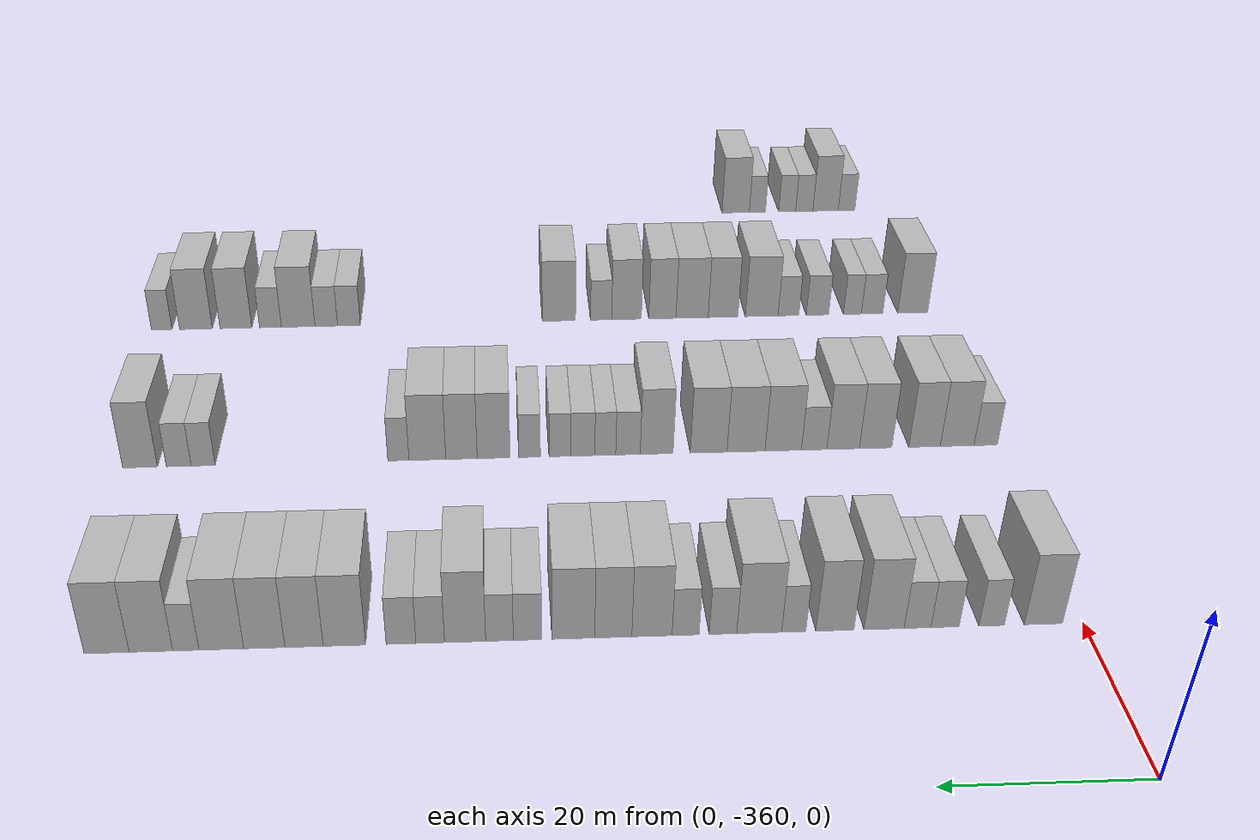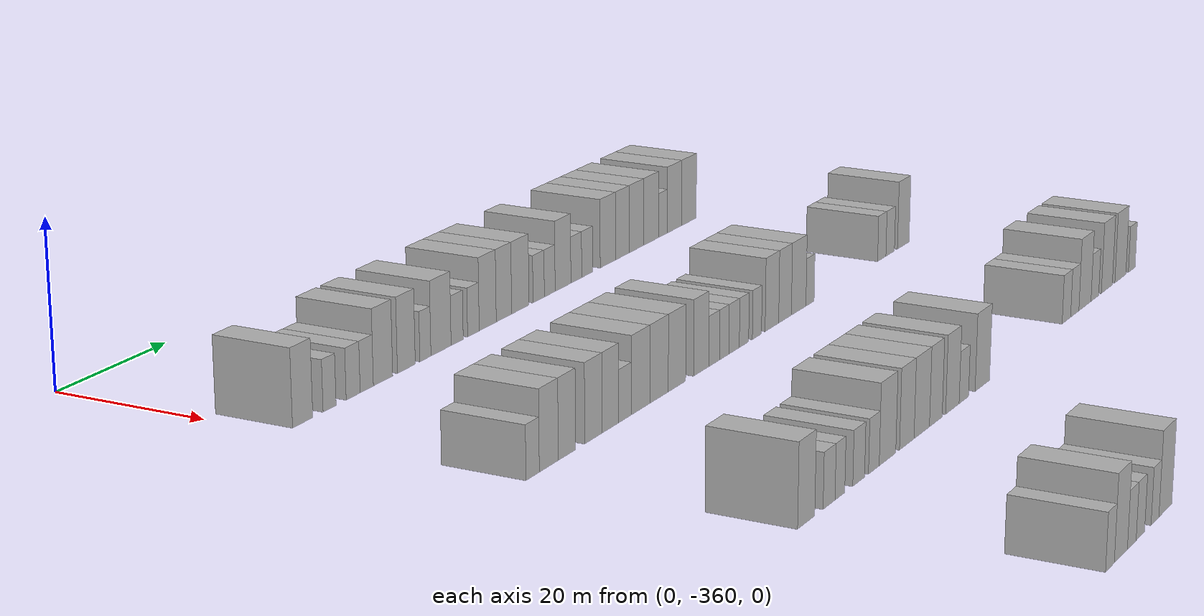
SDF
<sdf version="1.6">
 <world name="default">
  <model name="building_22">
   <static>1</static>
   <pose>25.0000 -355.9842 0 0.000000 0.000000 0.000000</pose>
   <link name="link">
    <pose>0 0 4.50 0 0 0</pose>
    <collision name="collision"><geometry><box><size>10.0000 3.8636 9.0000</size></box></geometry></collision>
    <visual name="visual">
     <cast_shadows>0</cast_shadows>
     <geometry><box><size>10.0000 3.8636 9.0000</size></box></geometry>
     <material>
      <script>
       <uri>model://HANNAS_wall/materials/scripts</uri>
       <uri>model://HANNAS_wall/materials/textures</uri>
       <name>vrc/HANNAS_wall</name>
      </script>
     </material>
    </visual>
   </link>
  </model>
  <model name="building_23">
   <static>1</static>
   <pose>25.0000 -350.7732 0 0.000000 0.000000 0.000000</pose>
   <link name="link">
    <pose>0 0 3.00 0 0 0</pose>
    <collision name="collision"><geometry><box><size>10.0000 2.5584 6.0000</size></box></geometry></collision>
    <visual name="visual">
     <cast_shadows>0</cast_shadows>
     <geometry><box><size>10.0000 2.5584 6.0000</size></box></geometry>
     <material>
      <script>
       <uri>model://HANNAS_wall/materials/scripts</uri>
       <uri>model://HANNAS_wall/materials/textures</uri>
       <name>vrc/HANNAS_wall</name>
      </script>
     </material>
    </visual>
   </link>
  </model>
  <model name="building_24">
   <static>1</static>
   <pose>25.0000 -346.0827 0 0.000000 0.000000 0.000000</pose>
   <link name="link">
    <pose>0 0 3.00 0 0 0</pose>
    <collision name="collision"><geometry><box><size>10.0000 2.8226 6.0000</size></box></geometry></collision>
    <visual name="visual">
     <cast_shadows>0</cast_shadows>
     <geometry><box><size>10.0000 2.8226 6.0000</size></box></geometry>
     <material>
      <script>
       <uri>model://HANNAS_wall/materials/scripts</uri>
       <uri>model://HANNAS_wall/materials/textures</uri>
       <name>vrc/HANNAS_wall</name>
      </script>
     </material>
    </visual>
   </link>
  </model>
  <model name="building_25">
   <static>1</static>
   <pose>25.0000 -343.3241 0 0.000000 0.000000 0.000000</pose>
   <link name="link">
    <pose>0 0 3.00 0 0 0</pose>
    <collision name="collision"><geometry><box><size>10.0000 2.6947 6.0000</size></box></geometry></collision>
    <visual name="visual">
     <cast_shadows>0</cast_shadows>
     <geometry><box><size>10.0000 2.6947 6.0000</size></box></geometry>
     <material>
      <script>
       <uri>model://HANNAS_wall/materials/scripts</uri>
       <uri>model://HANNAS_wall/materials/textures</uri>
       <name>vrc/HANNAS_wall</name>
      </script>
     </material>
    </visual>
   </link>
  </model>
  <model name="building_26">
   <static>1</static>
   <pose>25.0000 -339.9668 0 0.000000 0.000000 0.000000</pose>
   <link name="link">
    <pose>0 0 4.50 0 0 0</pose>
    <collision name="collision"><geometry><box><size>10.0000 4.0198 9.0000</size></box></geometry></collision>
    <visual name="visual">
     <cast_shadows>0</cast_shadows>
     <geometry><box><size>10.0000 4.0198 9.0000</size></box></geometry>
     <material>
      <script>
       <uri>model://HANNAS_wall/materials/scripts</uri>
       <uri>model://HANNAS_wall/materials/textures</uri>
       <name>vrc/HANNAS_wall</name>
      </script>
     </material>
    </visual>
   </link>
  </model>
  <model name="building_27">
   <static>1</static>
   <pose>25.0000 -335.0545 0 0.000000 0.000000 0.000000</pose>
   <link name="link">
    <pose>0 0 4.50 0 0 0</pose>
    <collision name="collision"><geometry><box><size>10.0000 3.8048 9.0000</size></box></geometry></collision>
    <visual name="visual">
     <cast_shadows>0</cast_shadows>
     <geometry><box><size>10.0000 3.8048 9.0000</size></box></geometry>
     <material>
      <script>
       <uri>model://HANNAS_wall/materials/scripts</uri>
       <uri>model://HANNAS_wall/materials/textures</uri>
       <name>vrc/HANNAS_wall</name>
      </script>
     </material>
    </visual>
   </link>
  </model>
  <model name="building_28">
   <static>1</static>
   <pose>25.0000 -330.9472 0 0.000000 0.000000 0.000000</pose>
   <link name="link">
    <pose>0 0 3.00 0 0 0</pose>
    <collision name="collision"><geometry><box><size>10.0000 2.4097 6.0000</size></box></geometry></collision>
    <visual name="visual">
     <cast_shadows>0</cast_shadows>
     <geometry><box><size>10.0000 2.4097 6.0000</size></box></geometry>
     <material>
      <script>
       <uri>model://HANNAS_wall/materials/scripts</uri>
       <uri>model://HANNAS_wall/materials/textures</uri>
       <name>vrc/HANNAS_wall</name>
      </script>
     </material>
    </visual>
   </link>
  </model>
  <model name="building_29">
   <static>1</static>
   <pose>25.0000 -327.5070 0 0.000000 0.000000 0.000000</pose>
   <link name="link">
    <pose>0 0 4.50 0 0 0</pose>
    <collision name="collision"><geometry><box><size>10.0000 4.4708 9.0000</size></box></geometry></collision>
    <visual name="visual">
     <cast_shadows>0</cast_shadows>
     <geometry><box><size>10.0000 4.4708 9.0000</size></box></geometry>
     <material>
      <script>
       <uri>model://HANNAS_wall/materials/scripts</uri>
       <uri>model://HANNAS_wall/materials/textures</uri>
       <name>vrc/HANNAS_wall</name>
      </script>
     </material>
    </visual>
   </link>
  </model>
  <model name="building_30">
   <static>1</static>
   <pose>25.0000 -323.9054 0 0.000000 0.000000 0.000000</pose>
   <link name="link">
    <pose>0 0 3.00 0 0 0</pose>
    <collision name="collision"><geometry><box><size>10.0000 2.7323 6.0000</size></box></geometry></collision>
    <visual name="visual">
     <cast_shadows>0</cast_shadows>
     <geometry><box><size>10.0000 2.7323 6.0000</size></box></geometry>
     <material>
      <script>
       <uri>model://HANNAS_wall/materials/scripts</uri>
       <uri>model://HANNAS_wall/materials/textures</uri>
       <name>vrc/HANNAS_wall</name>
      </script>
     </material>
    </visual>
   </link>
  </model>
  <model name="building_31">
   <static>1</static>
   <pose>25.0000 -320.1996 0 0.000000 0.000000 0.000000</pose>
   <link name="link">
    <pose>0 0 3.00 0 0 0</pose>
    <collision name="collision"><geometry><box><size>10.0000 2.6794 6.0000</size></box></geometry></collision>
    <visual name="visual">
     <cast_shadows>0</cast_shadows>
     <geometry><box><size>10.0000 2.6794 6.0000</size></box></geometry>
     <material>
      <script>
       <uri>model://HANNAS_wall/materials/scripts</uri>
       <uri>model://HANNAS_wall/materials/textures</uri>
       <name>vrc/HANNAS_wall</name>
      </script>
     </material>
    </visual>
   </link>
  </model>
  <model name="building_32">
   <static>1</static>
   <pose>25.0000 -316.8706 0 0.000000 0.000000 0.000000</pose>
   <link name="link">
    <pose>0 0 4.50 0 0 0</pose>
    <collision name="collision"><geometry><box><size>10.0000 3.9786 9.0000</size></box></geometry></collision>
    <visual name="visual">
     <cast_shadows>0</cast_shadows>
     <geometry><box><size>10.0000 3.9786 9.0000</size></box></geometry>
     <material>
      <script>
       <uri>model://HANNAS_wall/materials/scripts</uri>
       <uri>model://HANNAS_wall/materials/textures</uri>
       <name>vrc/HANNAS_wall</name>
      </script>
     </material>
    </visual>
   </link>
  </model>
  <model name="building_33">
   <static>1</static>
   <pose>25.0000 -313.0460 0 0.000000 0.000000 0.000000</pose>
   <link name="link">
    <pose>0 0 4.50 0 0 0</pose>
    <collision name="collision"><geometry><box><size>10.0000 3.6706 9.0000</size></box></geometry></collision>
    <visual name="visual">
     <cast_shadows>0</cast_shadows>
     <geometry><box><size>10.0000 3.6706 9.0000</size></box></geometry>
     <material>
      <script>
       <uri>model://HANNAS_wall/materials/scripts</uri>
       <uri>model://HANNAS_wall/materials/textures</uri>
       <name>vrc/HANNAS_wall</name>
      </script>
     </material>
    </visual>
   </link>
  </model>
  <model name="building_34">
   <static>1</static>
   <pose>25.0000 -309.1105 0 0.000000 0.000000 0.000000</pose>
   <link name="link">
    <pose>0 0 4.50 0 0 0</pose>
    <collision name="collision"><geometry><box><size>10.0000 4.2003 9.0000</size></box></geometry></collision>
    <visual name="visual">
     <cast_shadows>0</cast_shadows>
     <geometry><box><size>10.0000 4.2003 9.0000</size></box></geometry>
     <material>
      <script>
       <uri>model://HANNAS_wall/materials/scripts</uri>
       <uri>model://HANNAS_wall/materials/textures</uri>
       <name>vrc/HANNAS_wall</name>
      </script>
     </material>
    </visual>
   </link>
  </model>
  <model name="building_35">
   <static>1</static>
   <pose>25.0000 -304.6048 0 0.000000 0.000000 0.000000</pose>
   <link name="link">
    <pose>0 0 3.00 0 0 0</pose>
    <collision name="collision"><geometry><box><size>10.0000 2.8110 6.0000</size></box></geometry></collision>
    <visual name="visual">
     <cast_shadows>0</cast_shadows>
     <geometry><box><size>10.0000 2.8110 6.0000</size></box></geometry>
     <material>
      <script>
       <uri>model://HANNAS_wall/materials/scripts</uri>
       <uri>model://HANNAS_wall/materials/textures</uri>
       <name>vrc/HANNAS_wall</name>
      </script>
     </material>
    </visual>
   </link>
  </model>
  <model name="building_36">
   <static>1</static>
   <pose>25.0000 -301.8434 0 0.000000 0.000000 0.000000</pose>
   <link name="link">
    <pose>0 0 3.00 0 0 0</pose>
    <collision name="collision"><geometry><box><size>10.0000 2.7119 6.0000</size></box></geometry></collision>
    <visual name="visual">
     <cast_shadows>0</cast_shadows>
     <geometry><box><size>10.0000 2.7119 6.0000</size></box></geometry>
     <material>
      <script>
       <uri>model://HANNAS_wall/materials/scripts</uri>
       <uri>model://HANNAS_wall/materials/textures</uri>
       <name>vrc/HANNAS_wall</name>
      </script>
     </material>
    </visual>
   </link>
  </model>
  <model name="building_37">
   <static>1</static>
   <pose>25.0000 -298.4720 0 0.000000 0.000000 0.000000</pose>
   <link name="link">
    <pose>0 0 4.50 0 0 0</pose>
    <collision name="collision"><geometry><box><size>10.0000 4.0309 9.0000</size></box></geometry></collision>
    <visual name="visual">
     <cast_shadows>0</cast_shadows>
     <geometry><box><size>10.0000 4.0309 9.0000</size></box></geometry>
     <material>
      <script>
       <uri>model://HANNAS_wall/materials/scripts</uri>
       <uri>model://HANNAS_wall/materials/textures</uri>
       <name>vrc/HANNAS_wall</name>
      </script>
     </material>
    </visual>
   </link>
  </model>
  <model name="building_38">
   <static>1</static>
   <pose>25.0000 -295.0568 0 0.000000 0.000000 0.000000</pose>
   <link name="link">
    <pose>0 0 3.00 0 0 0</pose>
    <collision name="collision"><geometry><box><size>10.0000 2.7996 6.0000</size></box></geometry></collision>
    <visual name="visual">
     <cast_shadows>0</cast_shadows>
     <geometry><box><size>10.0000 2.7996 6.0000</size></box></geometry>
     <material>
      <script>
       <uri>model://HANNAS_wall/materials/scripts</uri>
       <uri>model://HANNAS_wall/materials/textures</uri>
       <name>vrc/HANNAS_wall</name>
      </script>
     </material>
    </visual>
   </link>
  </model>
  <model name="building_39">
   <static>1</static>
   <pose>25.0000 -292.2047 0 0.000000 0.000000 0.000000</pose>
   <link name="link">
    <pose>0 0 3.00 0 0 0</pose>
    <collision name="collision"><geometry><box><size>10.0000 2.9045 6.0000</size></box></geometry></collision>
    <visual name="visual">
     <cast_shadows>0</cast_shadows>
     <geometry><box><size>10.0000 2.9045 6.0000</size></box></geometry>
     <material>
      <script>
       <uri>model://HANNAS_wall/materials/scripts</uri>
       <uri>model://HANNAS_wall/materials/textures</uri>
       <name>vrc/HANNAS_wall</name>
      </script>
     </material>
    </visual>
   </link>
  </model>
  <model name="building_40">
   <static>1</static>
   <pose>25.0000 -286.6852 0 0.000000 0.000000 0.000000</pose>
   <link name="link">
    <pose>0 0 4.50 0 0 0</pose>
    <collision name="collision"><geometry><box><size>10.0000 4.1346 9.0000</size></box></geometry></collision>
    <visual name="visual">
     <cast_shadows>0</cast_shadows>
     <geometry><box><size>10.0000 4.1346 9.0000</size></box></geometry>
     <material>
      <script>
       <uri>model://HANNAS_wall/materials/scripts</uri>
       <uri>model://HANNAS_wall/materials/textures</uri>
       <name>vrc/HANNAS_wall</name>
      </script>
     </material>
    </visual>
   </link>
  </model>
  <model name="building_41">
   <static>1</static>
   <pose>25.0000 -282.7519 0 0.000000 0.000000 0.000000</pose>
   <link name="link">
    <pose>0 0 4.50 0 0 0</pose>
    <collision name="collision"><geometry><box><size>10.0000 3.7319 9.0000</size></box></geometry></collision>
    <visual name="visual">
     <cast_shadows>0</cast_shadows>
     <geometry><box><size>10.0000 3.7319 9.0000</size></box></geometry>
     <material>
      <script>
       <uri>model://HANNAS_wall/materials/scripts</uri>
       <uri>model://HANNAS_wall/materials/textures</uri>
       <name>vrc/HANNAS_wall</name>
      </script>
     </material>
    </visual>
   </link>
  </model>
  <model name="building_42">
   <static>1</static>
   <pose>25.0000 -278.8896 0 0.000000 0.000000 0.000000</pose>
   <link name="link">
    <pose>0 0 4.50 0 0 0</pose>
    <collision name="collision"><geometry><box><size>10.0000 3.9926 9.0000</size></box></geometry></collision>
    <visual name="visual">
     <cast_shadows>0</cast_shadows>
     <geometry><box><size>10.0000 3.9926 9.0000</size></box></geometry>
     <material>
      <script>
       <uri>model://HANNAS_wall/materials/scripts</uri>
       <uri>model://HANNAS_wall/materials/textures</uri>
       <name>vrc/HANNAS_wall</name>
      </script>
     </material>
    </visual>
   </link>
  </model>
  <model name="building_43">
   <static>1</static>
   <pose>25.0000 -274.7238 0 0.000000 0.000000 0.000000</pose>
   <link name="link">
    <pose>0 0 4.50 0 0 0</pose>
    <collision name="collision"><geometry><box><size>10.0000 4.3390 9.0000</size></box></geometry></collision>
    <visual name="visual">
     <cast_shadows>0</cast_shadows>
     <geometry><box><size>10.0000 4.3390 9.0000</size></box></geometry>
     <material>
      <script>
       <uri>model://HANNAS_wall/materials/scripts</uri>
       <uri>model://HANNAS_wall/materials/textures</uri>
       <name>vrc/HANNAS_wall</name>
      </script>
     </material>
    </visual>
   </link>
  </model>
  <model name="building_44">
   <static>1</static>
   <pose>25.0000 -271.2910 0 0.000000 0.000000 0.000000</pose>
   <link name="link">
    <pose>0 0 3.00 0 0 0</pose>
    <collision name="collision"><geometry><box><size>10.0000 2.5265 6.0000</size></box></geometry></collision>
    <visual name="visual">
     <cast_shadows>0</cast_shadows>
     <geometry><box><size>10.0000 2.5265 6.0000</size></box></geometry>
     <material>
      <script>
       <uri>model://HANNAS_wall/materials/scripts</uri>
       <uri>model://HANNAS_wall/materials/textures</uri>
       <name>vrc/HANNAS_wall</name>
      </script>
     </material>
    </visual>
   </link>
  </model>
  <model name="building_45">
   <static>1</static>
   <pose>25.0000 -267.9232 0 0.000000 0.000000 0.000000</pose>
   <link name="link">
    <pose>0 0 4.50 0 0 0</pose>
    <collision name="collision"><geometry><box><size>10.0000 4.2090 9.0000</size></box></geometry></collision>
    <visual name="visual">
     <cast_shadows>0</cast_shadows>
     <geometry><box><size>10.0000 4.2090 9.0000</size></box></geometry>
     <material>
      <script>
       <uri>model://HANNAS_wall/materials/scripts</uri>
       <uri>model://HANNAS_wall/materials/textures</uri>
       <name>vrc/HANNAS_wall</name>
      </script>
     </material>
    </visual>
   </link>
  </model>
  <model name="building_46">
   <static>1</static>
   <pose>25.0000 -263.6469 0 0.000000 0.000000 0.000000</pose>
   <link name="link">
    <pose>0 0 4.50 0 0 0</pose>
    <collision name="collision"><geometry><box><size>10.0000 4.3437 9.0000</size></box></geometry></collision>
    <visual name="visual">
     <cast_shadows>0</cast_shadows>
     <geometry><box><size>10.0000 4.3437 9.0000</size></box></geometry>
     <material>
      <script>
       <uri>model://HANNAS_wall/materials/scripts</uri>
       <uri>model://HANNAS_wall/materials/textures</uri>
       <name>vrc/HANNAS_wall</name>
      </script>
     </material>
    </visual>
   </link>
  </model>
  <model name="building_251">
   <static>1</static>
   <pose>55.0000 -358.9118 0 0.000000 0.000000 0.000000</pose>
   <link name="link">
    <pose>0 0 3.00 0 0 0</pose>
    <collision name="collision"><geometry><box><size>10.0000 2.7487 6.0000</size></box></geometry></collision>
    <visual name="visual">
     <cast_shadows>0</cast_shadows>
     <geometry><box><size>10.0000 2.7487 6.0000</size></box></geometry>
     <material>
      <script>
       <uri>model://HANNAS_wall/materials/scripts</uri>
       <uri>model://HANNAS_wall/materials/textures</uri>
       <name>vrc/HANNAS_wall</name>
      </script>
     </material>
    </visual>
   </link>
  </model>
  <model name="building_252">
   <static>1</static>
   <pose>55.0000 -355.5459 0 0.000000 0.000000 0.000000</pose>
   <link name="link">
    <pose>0 0 4.50 0 0 0</pose>
    <collision name="collision"><geometry><box><size>10.0000 3.9830 9.0000</size></box></geometry></collision>
    <visual name="visual">
     <cast_shadows>0</cast_shadows>
     <geometry><box><size>10.0000 3.9830 9.0000</size></box></geometry>
     <material>
      <script>
       <uri>model://HANNAS_wall/materials/scripts</uri>
       <uri>model://HANNAS_wall/materials/textures</uri>
       <name>vrc/HANNAS_wall</name>
      </script>
     </material>
    </visual>
   </link>
  </model>
  <model name="building_253">
   <static>1</static>
   <pose>55.0000 -351.7031 0 0.000000 0.000000 0.000000</pose>
   <link name="link">
    <pose>0 0 4.50 0 0 0</pose>
    <collision name="collision"><geometry><box><size>10.0000 3.7027 9.0000</size></box></geometry></collision>
    <visual name="visual">
     <cast_shadows>0</cast_shadows>
     <geometry><box><size>10.0000 3.7027 9.0000</size></box></geometry>
     <material>
      <script>
       <uri>model://HANNAS_wall/materials/scripts</uri>
       <uri>model://HANNAS_wall/materials/textures</uri>
       <name>vrc/HANNAS_wall</name>
      </script>
     </material>
    </visual>
   </link>
  </model>
  <model name="building_254">
   <static>1</static>
   <pose>55.0000 -345.9434 0 0.000000 0.000000 0.000000</pose>
   <link name="link">
    <pose>0 0 4.50 0 0 0</pose>
    <collision name="collision"><geometry><box><size>10.0000 3.8166 9.0000</size></box></geometry></collision>
    <visual name="visual">
     <cast_shadows>0</cast_shadows>
     <geometry><box><size>10.0000 3.8166 9.0000</size></box></geometry>
     <material>
      <script>
       <uri>model://HANNAS_wall/materials/scripts</uri>
       <uri>model://HANNAS_wall/materials/textures</uri>
       <name>vrc/HANNAS_wall</name>
      </script>
     </material>
    </visual>
   </link>
  </model>
  <model name="building_255">
   <static>1</static>
   <pose>55.0000 -342.1344 0 0.000000 0.000000 0.000000</pose>
   <link name="link">
    <pose>0 0 4.50 0 0 0</pose>
    <collision name="collision"><geometry><box><size>10.0000 3.8015 9.0000</size></box></geometry></collision>
    <visual name="visual">
     <cast_shadows>0</cast_shadows>
     <geometry><box><size>10.0000 3.8015 9.0000</size></box></geometry>
     <material>
      <script>
       <uri>model://HANNAS_wall/materials/scripts</uri>
       <uri>model://HANNAS_wall/materials/textures</uri>
       <name>vrc/HANNAS_wall</name>
      </script>
     </material>
    </visual>
   </link>
  </model>
  <model name="building_256">
   <static>1</static>
   <pose>55.0000 -338.7453 0 0.000000 0.000000 0.000000</pose>
   <link name="link">
    <pose>0 0 3.00 0 0 0</pose>
    <collision name="collision"><geometry><box><size>10.0000 2.9768 6.0000</size></box></geometry></collision>
    <visual name="visual">
     <cast_shadows>0</cast_shadows>
     <geometry><box><size>10.0000 2.9768 6.0000</size></box></geometry>
     <material>
      <script>
       <uri>model://HANNAS_wall/materials/scripts</uri>
       <uri>model://HANNAS_wall/materials/textures</uri>
       <name>vrc/HANNAS_wall</name>
      </script>
     </material>
    </visual>
   </link>
  </model>
  <model name="building_257">
   <static>1</static>
   <pose>55.0000 -335.1274 0 0.000000 0.000000 0.000000</pose>
   <link name="link">
    <pose>0 0 4.50 0 0 0</pose>
    <collision name="collision"><geometry><box><size>10.0000 4.2589 9.0000</size></box></geometry></collision>
    <visual name="visual">
     <cast_shadows>0</cast_shadows>
     <geometry><box><size>10.0000 4.2589 9.0000</size></box></geometry>
     <material>
      <script>
       <uri>model://HANNAS_wall/materials/scripts</uri>
       <uri>model://HANNAS_wall/materials/textures</uri>
       <name>vrc/HANNAS_wall</name>
      </script>
     </material>
    </visual>
   </link>
  </model>
  <model name="building_258">
   <static>1</static>
   <pose>55.0000 -330.7786 0 0.000000 0.000000 0.000000</pose>
   <link name="link">
    <pose>0 0 4.50 0 0 0</pose>
    <collision name="collision"><geometry><box><size>10.0000 4.4389 9.0000</size></box></geometry></collision>
    <visual name="visual">
     <cast_shadows>0</cast_shadows>
     <geometry><box><size>10.0000 4.4389 9.0000</size></box></geometry>
     <material>
      <script>
       <uri>model://HANNAS_wall/materials/scripts</uri>
       <uri>model://HANNAS_wall/materials/textures</uri>
       <name>vrc/HANNAS_wall</name>
      </script>
     </material>
    </visual>
   </link>
  </model>
  <model name="building_259">
   <static>1</static>
   <pose>55.0000 -326.4228 0 0.000000 0.000000 0.000000</pose>
   <link name="link">
    <pose>0 0 4.50 0 0 0</pose>
    <collision name="collision"><geometry><box><size>10.0000 4.2726 9.0000</size></box></geometry></collision>
    <visual name="visual">
     <cast_shadows>0</cast_shadows>
     <geometry><box><size>10.0000 4.2726 9.0000</size></box></geometry>
     <material>
      <script>
       <uri>model://HANNAS_wall/materials/scripts</uri>
       <uri>model://HANNAS_wall/materials/textures</uri>
       <name>vrc/HANNAS_wall</name>
      </script>
     </material>
    </visual>
   </link>
  </model>
  <model name="building_260">
   <static>1</static>
   <pose>55.0000 -320.3774 0 0.000000 0.000000 0.000000</pose>
   <link name="link">
    <pose>0 0 4.50 0 0 0</pose>
    <collision name="collision"><geometry><box><size>10.0000 3.8182 9.0000</size></box></geometry></collision>
    <visual name="visual">
     <cast_shadows>0</cast_shadows>
     <geometry><box><size>10.0000 3.8182 9.0000</size></box></geometry>
     <material>
      <script>
       <uri>model://HANNAS_wall/materials/scripts</uri>
       <uri>model://HANNAS_wall/materials/textures</uri>
       <name>vrc/HANNAS_wall</name>
      </script>
     </material>
    </visual>
   </link>
  </model>
  <model name="building_261">
   <static>1</static>
   <pose>55.0000 -317.0507 0 0.000000 0.000000 0.000000</pose>
   <link name="link">
    <pose>0 0 3.00 0 0 0</pose>
    <collision name="collision"><geometry><box><size>10.0000 2.8353 6.0000</size></box></geometry></collision>
    <visual name="visual">
     <cast_shadows>0</cast_shadows>
     <geometry><box><size>10.0000 2.8353 6.0000</size></box></geometry>
     <material>
      <script>
       <uri>model://HANNAS_wall/materials/scripts</uri>
       <uri>model://HANNAS_wall/materials/textures</uri>
       <name>vrc/HANNAS_wall</name>
      </script>
     </material>
    </visual>
   </link>
  </model>
  <model name="building_262">
   <static>1</static>
   <pose>55.0000 -314.4151 0 0.000000 0.000000 0.000000</pose>
   <link name="link">
    <pose>0 0 3.00 0 0 0</pose>
    <collision name="collision"><geometry><box><size>10.0000 2.4359 6.0000</size></box></geometry></collision>
    <visual name="visual">
     <cast_shadows>0</cast_shadows>
     <geometry><box><size>10.0000 2.4359 6.0000</size></box></geometry>
     <material>
      <script>
       <uri>model://HANNAS_wall/materials/scripts</uri>
       <uri>model://HANNAS_wall/materials/textures</uri>
       <name>vrc/HANNAS_wall</name>
      </script>
     </material>
    </visual>
   </link>
  </model>
  <model name="building_263">
   <static>1</static>
   <pose>55.0000 -311.8177 0 0.000000 0.000000 0.000000</pose>
   <link name="link">
    <pose>0 0 3.00 0 0 0</pose>
    <collision name="collision"><geometry><box><size>10.0000 2.7589 6.0000</size></box></geometry></collision>
    <visual name="visual">
     <cast_shadows>0</cast_shadows>
     <geometry><box><size>10.0000 2.7589 6.0000</size></box></geometry>
     <material>
      <script>
       <uri>model://HANNAS_wall/materials/scripts</uri>
       <uri>model://HANNAS_wall/materials/textures</uri>
       <name>vrc/HANNAS_wall</name>
      </script>
     </material>
    </visual>
   </link>
  </model>
  <model name="building_264">
   <static>1</static>
   <pose>55.0000 -309.1792 0 0.000000 0.000000 0.000000</pose>
   <link name="link">
    <pose>0 0 3.00 0 0 0</pose>
    <collision name="collision"><geometry><box><size>10.0000 2.5182 6.0000</size></box></geometry></collision>
    <visual name="visual">
     <cast_shadows>0</cast_shadows>
     <geometry><box><size>10.0000 2.5182 6.0000</size></box></geometry>
     <material>
      <script>
       <uri>model://HANNAS_wall/materials/scripts</uri>
       <uri>model://HANNAS_wall/materials/textures</uri>
       <name>vrc/HANNAS_wall</name>
      </script>
     </material>
    </visual>
   </link>
  </model>
  <model name="building_265">
   <static>1</static>
   <pose>55.0000 -305.6675 0 0.000000 0.000000 0.000000</pose>
   <link name="link">
    <pose>0 0 3.00 0 0 0</pose>
    <collision name="collision"><geometry><box><size>10.0000 2.5051 6.0000</size></box></geometry></collision>
    <visual name="visual">
     <cast_shadows>0</cast_shadows>
     <geometry><box><size>10.0000 2.5051 6.0000</size></box></geometry>
     <material>
      <script>
       <uri>model://HANNAS_wall/materials/scripts</uri>
       <uri>model://HANNAS_wall/materials/textures</uri>
       <name>vrc/HANNAS_wall</name>
      </script>
     </material>
    </visual>
   </link>
  </model>
  <model name="building_266">
   <static>1</static>
   <pose>55.0000 -301.5225 0 0.000000 0.000000 0.000000</pose>
   <link name="link">
    <pose>0 0 4.50 0 0 0</pose>
    <collision name="collision"><geometry><box><size>10.0000 3.7850 9.0000</size></box></geometry></collision>
    <visual name="visual">
     <cast_shadows>0</cast_shadows>
     <geometry><box><size>10.0000 3.7850 9.0000</size></box></geometry>
     <material>
      <script>
       <uri>model://HANNAS_wall/materials/scripts</uri>
       <uri>model://HANNAS_wall/materials/textures</uri>
       <name>vrc/HANNAS_wall</name>
      </script>
     </material>
    </visual>
   </link>
  </model>
  <model name="building_267">
   <static>1</static>
   <pose>55.0000 -297.8250 0 0.000000 0.000000 0.000000</pose>
   <link name="link">
    <pose>0 0 4.50 0 0 0</pose>
    <collision name="collision"><geometry><box><size>10.0000 3.6100 9.0000</size></box></geometry></collision>
    <visual name="visual">
     <cast_shadows>0</cast_shadows>
     <geometry><box><size>10.0000 3.6100 9.0000</size></box></geometry>
     <material>
      <script>
       <uri>model://HANNAS_wall/materials/scripts</uri>
       <uri>model://HANNAS_wall/materials/textures</uri>
       <name>vrc/HANNAS_wall</name>
      </script>
     </material>
    </visual>
   </link>
  </model>
  <model name="building_268">
   <static>1</static>
   <pose>55.0000 -293.9086 0 0.000000 0.000000 0.000000</pose>
   <link name="link">
    <pose>0 0 4.50 0 0 0</pose>
    <collision name="collision"><geometry><box><size>10.0000 4.2228 9.0000</size></box></geometry></collision>
    <visual name="visual">
     <cast_shadows>0</cast_shadows>
     <geometry><box><size>10.0000 4.2228 9.0000</size></box></geometry>
     <material>
      <script>
       <uri>model://HANNAS_wall/materials/scripts</uri>
       <uri>model://HANNAS_wall/materials/textures</uri>
       <name>vrc/HANNAS_wall</name>
      </script>
     </material>
    </visual>
   </link>
  </model>
  <model name="building_269">
   <static>1</static>
   <pose>55.0000 -290.5890 0 0.000000 0.000000 0.000000</pose>
   <link name="link">
    <pose>0 0 3.00 0 0 0</pose>
    <collision name="collision"><geometry><box><size>10.0000 2.4164 6.0000</size></box></geometry></collision>
    <visual name="visual">
     <cast_shadows>0</cast_shadows>
     <geometry><box><size>10.0000 2.4164 6.0000</size></box></geometry>
     <material>
      <script>
       <uri>model://HANNAS_wall/materials/scripts</uri>
       <uri>model://HANNAS_wall/materials/textures</uri>
       <name>vrc/HANNAS_wall</name>
      </script>
     </material>
    </visual>
   </link>
  </model>
  <model name="building_270">
   <static>1</static>
   <pose>55.0000 -268.3069 0 0.000000 0.000000 0.000000</pose>
   <link name="link">
    <pose>0 0 3.00 0 0 0</pose>
    <collision name="collision"><geometry><box><size>10.0000 2.7160 6.0000</size></box></geometry></collision>
    <visual name="visual">
     <cast_shadows>0</cast_shadows>
     <geometry><box><size>10.0000 2.7160 6.0000</size></box></geometry>
     <material>
      <script>
       <uri>model://HANNAS_wall/materials/scripts</uri>
       <uri>model://HANNAS_wall/materials/textures</uri>
       <name>vrc/HANNAS_wall</name>
      </script>
     </material>
    </visual>
   </link>
  </model>
  <model name="building_271">
   <static>1</static>
   <pose>55.0000 -265.5389 0 0.000000 0.000000 0.000000</pose>
   <link name="link">
    <pose>0 0 3.00 0 0 0</pose>
    <collision name="collision"><geometry><box><size>10.0000 2.8201 6.0000</size></box></geometry></collision>
    <visual name="visual">
     <cast_shadows>0</cast_shadows>
     <geometry><box><size>10.0000 2.8201 6.0000</size></box></geometry>
     <material>
      <script>
       <uri>model://HANNAS_wall/materials/scripts</uri>
       <uri>model://HANNAS_wall/materials/textures</uri>
       <name>vrc/HANNAS_wall</name>
      </script>
     </material>
    </visual>
   </link>
  </model>
  <model name="building_272">
   <static>1</static>
   <pose>55.0000 -261.1617 0 0.000000 0.000000 0.000000</pose>
   <link name="link">
    <pose>0 0 4.50 0 0 0</pose>
    <collision name="collision"><geometry><box><size>10.0000 3.9342 9.0000</size></box></geometry></collision>
    <visual name="visual">
     <cast_shadows>0</cast_shadows>
     <geometry><box><size>10.0000 3.9342 9.0000</size></box></geometry>
     <material>
      <script>
       <uri>model://HANNAS_wall/materials/scripts</uri>
       <uri>model://HANNAS_wall/materials/textures</uri>
       <name>vrc/HANNAS_wall</name>
      </script>
     </material>
    </visual>
   </link>
  </model>
  <model name="building_467">
   <static>1</static>
   <pose>85.0000 -357.7695 0 0.000000 0.000000 0.000000</pose>
   <link name="link">
    <pose>0 0 4.50 0 0 0</pose>
    <collision name="collision"><geometry><box><size>10.0000 4.0440 9.0000</size></box></geometry></collision>
    <visual name="visual">
     <cast_shadows>0</cast_shadows>
     <geometry><box><size>10.0000 4.0440 9.0000</size></box></geometry>
     <material>
      <script>
       <uri>model://HANNAS_wall/materials/scripts</uri>
       <uri>model://HANNAS_wall/materials/textures</uri>
       <name>vrc/HANNAS_wall</name>
      </script>
     </material>
    </visual>
   </link>
  </model>
  <model name="building_468">
   <static>1</static>
   <pose>85.0000 -352.2981 0 0.000000 0.000000 0.000000</pose>
   <link name="link">
    <pose>0 0 3.00 0 0 0</pose>
    <collision name="collision"><geometry><box><size>10.0000 2.8989 6.0000</size></box></geometry></collision>
    <visual name="visual">
     <cast_shadows>0</cast_shadows>
     <geometry><box><size>10.0000 2.8989 6.0000</size></box></geometry>
     <material>
      <script>
       <uri>model://HANNAS_wall/materials/scripts</uri>
       <uri>model://HANNAS_wall/materials/textures</uri>
       <name>vrc/HANNAS_wall</name>
      </script>
     </material>
    </visual>
   </link>
  </model>
  <model name="building_469">
   <static>1</static>
   <pose>85.0000 -349.6460 0 0.000000 0.000000 0.000000</pose>
   <link name="link">
    <pose>0 0 3.00 0 0 0</pose>
    <collision name="collision"><geometry><box><size>10.0000 2.4054 6.0000</size></box></geometry></collision>
    <visual name="visual">
     <cast_shadows>0</cast_shadows>
     <geometry><box><size>10.0000 2.4054 6.0000</size></box></geometry>
     <material>
      <script>
       <uri>model://HANNAS_wall/materials/scripts</uri>
       <uri>model://HANNAS_wall/materials/textures</uri>
       <name>vrc/HANNAS_wall</name>
      </script>
     </material>
    </visual>
   </link>
  </model>
  <model name="building_470">
   <static>1</static>
   <pose>85.0000 -344.9437 0 0.000000 0.000000 0.000000</pose>
   <link name="link">
    <pose>0 0 3.00 0 0 0</pose>
    <collision name="collision"><geometry><box><size>10.0000 2.9993 6.0000</size></box></geometry></collision>
    <visual name="visual">
     <cast_shadows>0</cast_shadows>
     <geometry><box><size>10.0000 2.9993 6.0000</size></box></geometry>
     <material>
      <script>
       <uri>model://HANNAS_wall/materials/scripts</uri>
       <uri>model://HANNAS_wall/materials/textures</uri>
       <name>vrc/HANNAS_wall</name>
      </script>
     </material>
    </visual>
   </link>
  </model>
  <model name="building_471">
   <static>1</static>
   <pose>85.0000 -341.0512 0 0.000000 0.000000 0.000000</pose>
   <link name="link">
    <pose>0 0 3.00 0 0 0</pose>
    <collision name="collision"><geometry><box><size>10.0000 2.7857 6.0000</size></box></geometry></collision>
    <visual name="visual">
     <cast_shadows>0</cast_shadows>
     <geometry><box><size>10.0000 2.7857 6.0000</size></box></geometry>
     <material>
      <script>
       <uri>model://HANNAS_wall/materials/scripts</uri>
       <uri>model://HANNAS_wall/materials/textures</uri>
       <name>vrc/HANNAS_wall</name>
      </script>
     </material>
    </visual>
   </link>
  </model>
  <model name="building_472">
   <static>1</static>
   <pose>85.0000 -337.4637 0 0.000000 0.000000 0.000000</pose>
   <link name="link">
    <pose>0 0 4.50 0 0 0</pose>
    <collision name="collision"><geometry><box><size>10.0000 4.3893 9.0000</size></box></geometry></collision>
    <visual name="visual">
     <cast_shadows>0</cast_shadows>
     <geometry><box><size>10.0000 4.3893 9.0000</size></box></geometry>
     <material>
      <script>
       <uri>model://HANNAS_wall/materials/scripts</uri>
       <uri>model://HANNAS_wall/materials/textures</uri>
       <name>vrc/HANNAS_wall</name>
      </script>
     </material>
    </visual>
   </link>
  </model>
  <model name="building_473">
   <static>1</static>
   <pose>85.0000 -332.2822 0 0.000000 0.000000 0.000000</pose>
   <link name="link">
    <pose>0 0 4.50 0 0 0</pose>
    <collision name="collision"><geometry><box><size>10.0000 3.9735 9.0000</size></box></geometry></collision>
    <visual name="visual">
     <cast_shadows>0</cast_shadows>
     <geometry><box><size>10.0000 3.9735 9.0000</size></box></geometry>
     <material>
      <script>
       <uri>model://HANNAS_wall/materials/scripts</uri>
       <uri>model://HANNAS_wall/materials/textures</uri>
       <name>vrc/HANNAS_wall</name>
      </script>
     </material>
    </visual>
   </link>
  </model>
  <model name="building_474">
   <static>1</static>
   <pose>85.0000 -328.1466 0 0.000000 0.000000 0.000000</pose>
   <link name="link">
    <pose>0 0 4.50 0 0 0</pose>
    <collision name="collision"><geometry><box><size>10.0000 4.2977 9.0000</size></box></geometry></collision>
    <visual name="visual">
     <cast_shadows>0</cast_shadows>
     <geometry><box><size>10.0000 4.2977 9.0000</size></box></geometry>
     <material>
      <script>
       <uri>model://HANNAS_wall/materials/scripts</uri>
       <uri>model://HANNAS_wall/materials/textures</uri>
       <name>vrc/HANNAS_wall</name>
      </script>
     </material>
    </visual>
   </link>
  </model>
  <model name="building_475">
   <static>1</static>
   <pose>85.0000 -324.1848 0 0.000000 0.000000 0.000000</pose>
   <link name="link">
    <pose>0 0 4.50 0 0 0</pose>
    <collision name="collision"><geometry><box><size>10.0000 3.6259 9.0000</size></box></geometry></collision>
    <visual name="visual">
     <cast_shadows>0</cast_shadows>
     <geometry><box><size>10.0000 3.6259 9.0000</size></box></geometry>
     <material>
      <script>
       <uri>model://HANNAS_wall/materials/scripts</uri>
       <uri>model://HANNAS_wall/materials/textures</uri>
       <name>vrc/HANNAS_wall</name>
      </script>
     </material>
    </visual>
   </link>
  </model>
  <model name="building_476">
   <static>1</static>
   <pose>85.0000 -319.3992 0 0.000000 0.000000 0.000000</pose>
   <link name="link">
    <pose>0 0 4.50 0 0 0</pose>
    <collision name="collision"><geometry><box><size>10.0000 3.9453 9.0000</size></box></geometry></collision>
    <visual name="visual">
     <cast_shadows>0</cast_shadows>
     <geometry><box><size>10.0000 3.9453 9.0000</size></box></geometry>
     <material>
      <script>
       <uri>model://HANNAS_wall/materials/scripts</uri>
       <uri>model://HANNAS_wall/materials/textures</uri>
       <name>vrc/HANNAS_wall</name>
      </script>
     </material>
    </visual>
   </link>
  </model>
  <model name="building_477">
   <static>1</static>
   <pose>85.0000 -316.0267 0 0.000000 0.000000 0.000000</pose>
   <link name="link">
    <pose>0 0 3.00 0 0 0</pose>
    <collision name="collision"><geometry><box><size>10.0000 2.7998 6.0000</size></box></geometry></collision>
    <visual name="visual">
     <cast_shadows>0</cast_shadows>
     <geometry><box><size>10.0000 2.7998 6.0000</size></box></geometry>
     <material>
      <script>
       <uri>model://HANNAS_wall/materials/scripts</uri>
       <uri>model://HANNAS_wall/materials/textures</uri>
       <name>vrc/HANNAS_wall</name>
      </script>
     </material>
    </visual>
   </link>
  </model>
  <model name="building_478">
   <static>1</static>
   <pose>85.0000 -310.4227 0 0.000000 0.000000 0.000000</pose>
   <link name="link">
    <pose>0 0 4.50 0 0 0</pose>
    <collision name="collision"><geometry><box><size>10.0000 4.4082 9.0000</size></box></geometry></collision>
    <visual name="visual">
     <cast_shadows>0</cast_shadows>
     <geometry><box><size>10.0000 4.4082 9.0000</size></box></geometry>
     <material>
      <script>
       <uri>model://HANNAS_wall/materials/scripts</uri>
       <uri>model://HANNAS_wall/materials/textures</uri>
       <name>vrc/HANNAS_wall</name>
      </script>
     </material>
    </visual>
   </link>
  </model>
  <model name="building_479">
   <static>1</static>
   <pose>85.0000 -282.7309 0 0.000000 0.000000 0.000000</pose>
   <link name="link">
    <pose>0 0 3.00 0 0 0</pose>
    <collision name="collision"><geometry><box><size>10.0000 2.9918 6.0000</size></box></geometry></collision>
    <visual name="visual">
     <cast_shadows>0</cast_shadows>
     <geometry><box><size>10.0000 2.9918 6.0000</size></box></geometry>
     <material>
      <script>
       <uri>model://HANNAS_wall/materials/scripts</uri>
       <uri>model://HANNAS_wall/materials/textures</uri>
       <name>vrc/HANNAS_wall</name>
      </script>
     </material>
    </visual>
   </link>
  </model>
  <model name="building_480">
   <static>1</static>
   <pose>85.0000 -279.7558 0 0.000000 0.000000 0.000000</pose>
   <link name="link">
    <pose>0 0 3.00 0 0 0</pose>
    <collision name="collision"><geometry><box><size>10.0000 2.9583 6.0000</size></box></geometry></collision>
    <visual name="visual">
     <cast_shadows>0</cast_shadows>
     <geometry><box><size>10.0000 2.9583 6.0000</size></box></geometry>
     <material>
      <script>
       <uri>model://HANNAS_wall/materials/scripts</uri>
       <uri>model://HANNAS_wall/materials/textures</uri>
       <name>vrc/HANNAS_wall</name>
      </script>
     </material>
    </visual>
   </link>
  </model>
  <model name="building_481">
   <static>1</static>
   <pose>85.0000 -276.0719 0 0.000000 0.000000 0.000000</pose>
   <link name="link">
    <pose>0 0 4.50 0 0 0</pose>
    <collision name="collision"><geometry><box><size>10.0000 4.4096 9.0000</size></box></geometry></collision>
    <visual name="visual">
     <cast_shadows>0</cast_shadows>
     <geometry><box><size>10.0000 4.4096 9.0000</size></box></geometry>
     <material>
      <script>
       <uri>model://HANNAS_wall/materials/scripts</uri>
       <uri>model://HANNAS_wall/materials/textures</uri>
       <name>vrc/HANNAS_wall</name>
      </script>
     </material>
    </visual>
   </link>
  </model>
  <model name="building_482">
   <static>1</static>
   <pose>85.0000 -272.4414 0 0.000000 0.000000 0.000000</pose>
   <link name="link">
    <pose>0 0 3.00 0 0 0</pose>
    <collision name="collision"><geometry><box><size>10.0000 2.8514 6.0000</size></box></geometry></collision>
    <visual name="visual">
     <cast_shadows>0</cast_shadows>
     <geometry><box><size>10.0000 2.8514 6.0000</size></box></geometry>
     <material>
      <script>
       <uri>model://HANNAS_wall/materials/scripts</uri>
       <uri>model://HANNAS_wall/materials/textures</uri>
       <name>vrc/HANNAS_wall</name>
      </script>
     </material>
    </visual>
   </link>
  </model>
  <model name="building_483">
   <static>1</static>
   <pose>85.0000 -267.9364 0 0.000000 0.000000 0.000000</pose>
   <link name="link">
    <pose>0 0 4.50 0 0 0</pose>
    <collision name="collision"><geometry><box><size>10.0000 4.1585 9.0000</size></box></geometry></collision>
    <visual name="visual">
     <cast_shadows>0</cast_shadows>
     <geometry><box><size>10.0000 4.1585 9.0000</size></box></geometry>
     <material>
      <script>
       <uri>model://HANNAS_wall/materials/scripts</uri>
       <uri>model://HANNAS_wall/materials/textures</uri>
       <name>vrc/HANNAS_wall</name>
      </script>
     </material>
    </visual>
   </link>
  </model>
  <model name="building_484">
   <static>1</static>
   <pose>85.0000 -262.7274 0 0.000000 0.000000 0.000000</pose>
   <link name="link">
    <pose>0 0 4.50 0 0 0</pose>
    <collision name="collision"><geometry><box><size>10.0000 4.2596 9.0000</size></box></geometry></collision>
    <visual name="visual">
     <cast_shadows>0</cast_shadows>
     <geometry><box><size>10.0000 4.2596 9.0000</size></box></geometry>
     <material>
      <script>
       <uri>model://HANNAS_wall/materials/scripts</uri>
       <uri>model://HANNAS_wall/materials/textures</uri>
       <name>vrc/HANNAS_wall</name>
      </script>
     </material>
    </visual>
   </link>
  </model>
  <model name="building_485">
   <static>1</static>
   <pose>85.0000 -258.2664 0 0.000000 0.000000 0.000000</pose>
   <link name="link">
    <pose>0 0 3.00 0 0 0</pose>
    <collision name="collision"><geometry><box><size>10.0000 2.6623 6.0000</size></box></geometry></collision>
    <visual name="visual">
     <cast_shadows>0</cast_shadows>
     <geometry><box><size>10.0000 2.6623 6.0000</size></box></geometry>
     <material>
      <script>
       <uri>model://HANNAS_wall/materials/scripts</uri>
       <uri>model://HANNAS_wall/materials/textures</uri>
       <name>vrc/HANNAS_wall</name>
      </script>
     </material>
    </visual>
   </link>
  </model>
  <model name="building_692">
   <static>1</static>
   <pose>115.0000 -355.1734 0 0.000000 0.000000 0.000000</pose>
   <link name="link">
    <pose>0 0 3.00 0 0 0</pose>
    <collision name="collision"><geometry><box><size>10.0000 2.5194 6.0000</size></box></geometry></collision>
    <visual name="visual">
     <cast_shadows>0</cast_shadows>
     <geometry><box><size>10.0000 2.5194 6.0000</size></box></geometry>
     <material>
      <script>
       <uri>model://HANNAS_wall/materials/scripts</uri>
       <uri>model://HANNAS_wall/materials/textures</uri>
       <name>vrc/HANNAS_wall</name>
      </script>
     </material>
    </visual>
   </link>
  </model>
  <model name="building_693">
   <static>1</static>
   <pose>115.0000 -351.9906 0 0.000000 0.000000 0.000000</pose>
   <link name="link">
    <pose>0 0 4.50 0 0 0</pose>
    <collision name="collision"><geometry><box><size>10.0000 3.8461 9.0000</size></box></geometry></collision>
    <visual name="visual">
     <cast_shadows>0</cast_shadows>
     <geometry><box><size>10.0000 3.8461 9.0000</size></box></geometry>
     <material>
      <script>
       <uri>model://HANNAS_wall/materials/scripts</uri>
       <uri>model://HANNAS_wall/materials/textures</uri>
       <name>vrc/HANNAS_wall</name>
      </script>
     </material>
    </visual>
   </link>
  </model>
  <model name="building_694">
   <static>1</static>
   <pose>115.0000 -348.7609 0 0.000000 0.000000 0.000000</pose>
   <link name="link">
    <pose>0 0 3.00 0 0 0</pose>
    <collision name="collision"><geometry><box><size>10.0000 2.6135 6.0000</size></box></geometry></collision>
    <visual name="visual">
     <cast_shadows>0</cast_shadows>
     <geometry><box><size>10.0000 2.6135 6.0000</size></box></geometry>
     <material>
      <script>
       <uri>model://HANNAS_wall/materials/scripts</uri>
       <uri>model://HANNAS_wall/materials/textures</uri>
       <name>vrc/HANNAS_wall</name>
      </script>
     </material>
    </visual>
   </link>
  </model>
  <model name="building_695">
   <static>1</static>
   <pose>115.0000 -346.1696 0 0.000000 0.000000 0.000000</pose>
   <link name="link">
    <pose>0 0 3.00 0 0 0</pose>
    <collision name="collision"><geometry><box><size>10.0000 2.5690 6.0000</size></box></geometry></collision>
    <visual name="visual">
     <cast_shadows>0</cast_shadows>
     <geometry><box><size>10.0000 2.5690 6.0000</size></box></geometry>
     <material>
      <script>
       <uri>model://HANNAS_wall/materials/scripts</uri>
       <uri>model://HANNAS_wall/materials/textures</uri>
       <name>vrc/HANNAS_wall</name>
      </script>
     </material>
    </visual>
   </link>
  </model>
  <model name="building_696">
   <static>1</static>
   <pose>115.0000 -341.6633 0 0.000000 0.000000 0.000000</pose>
   <link name="link">
    <pose>0 0 3.00 0 0 0</pose>
    <collision name="collision"><geometry><box><size>10.0000 2.4438 6.0000</size></box></geometry></collision>
    <visual name="visual">
     <cast_shadows>0</cast_shadows>
     <geometry><box><size>10.0000 2.4438 6.0000</size></box></geometry>
     <material>
      <script>
       <uri>model://HANNAS_wall/materials/scripts</uri>
       <uri>model://HANNAS_wall/materials/textures</uri>
       <name>vrc/HANNAS_wall</name>
      </script>
     </material>
    </visual>
   </link>
  </model>
  <model name="building_697">
   <static>1</static>
   <pose>115.0000 -338.3891 0 0.000000 0.000000 0.000000</pose>
   <link name="link">
    <pose>0 0 4.50 0 0 0</pose>
    <collision name="collision"><geometry><box><size>10.0000 4.1045 9.0000</size></box></geometry></collision>
    <visual name="visual">
     <cast_shadows>0</cast_shadows>
     <geometry><box><size>10.0000 4.1045 9.0000</size></box></geometry>
     <material>
      <script>
       <uri>model://HANNAS_wall/materials/scripts</uri>
       <uri>model://HANNAS_wall/materials/textures</uri>
       <name>vrc/HANNAS_wall</name>
      </script>
     </material>
    </visual>
   </link>
  </model>
 </world>
</sdf>
